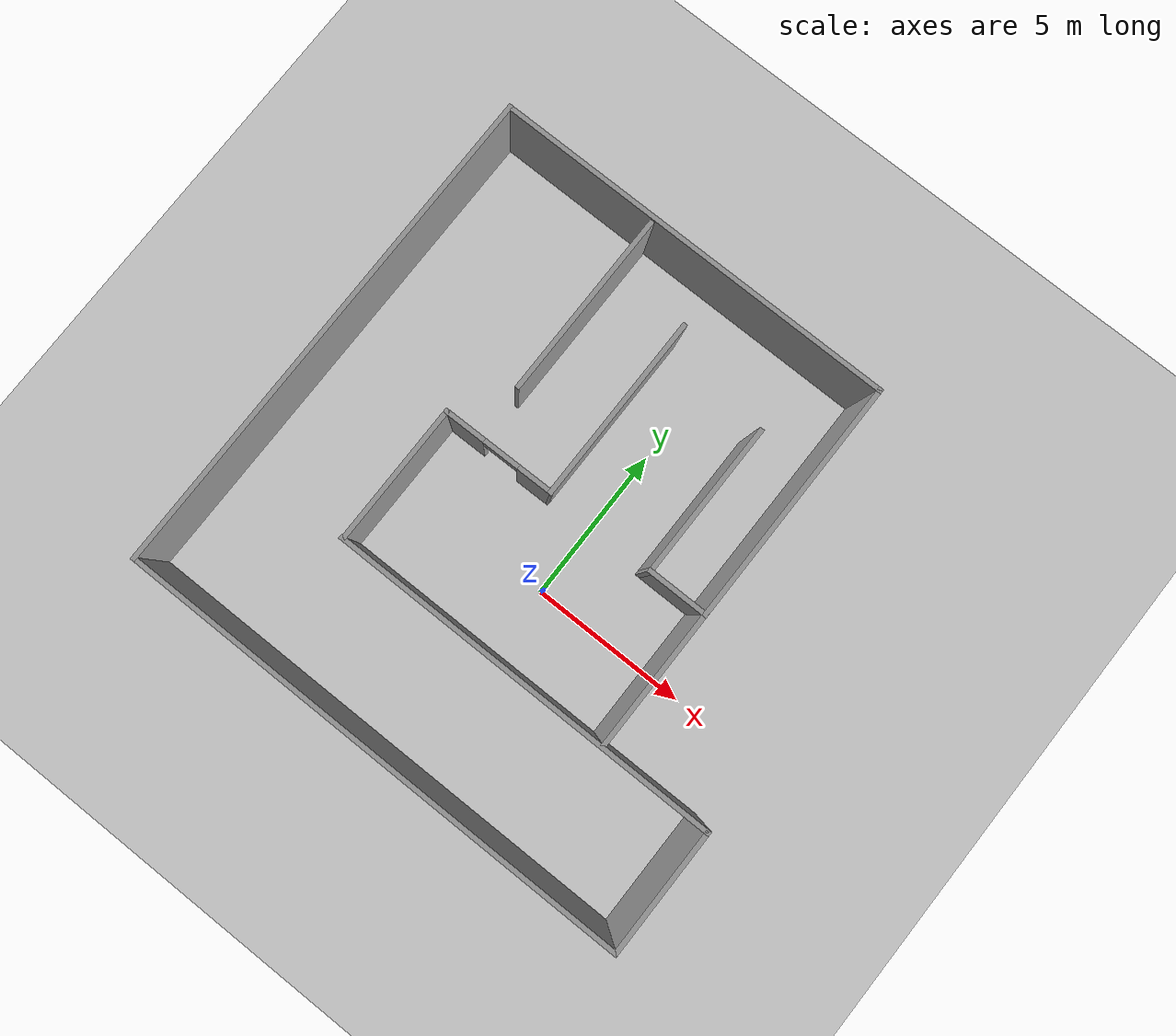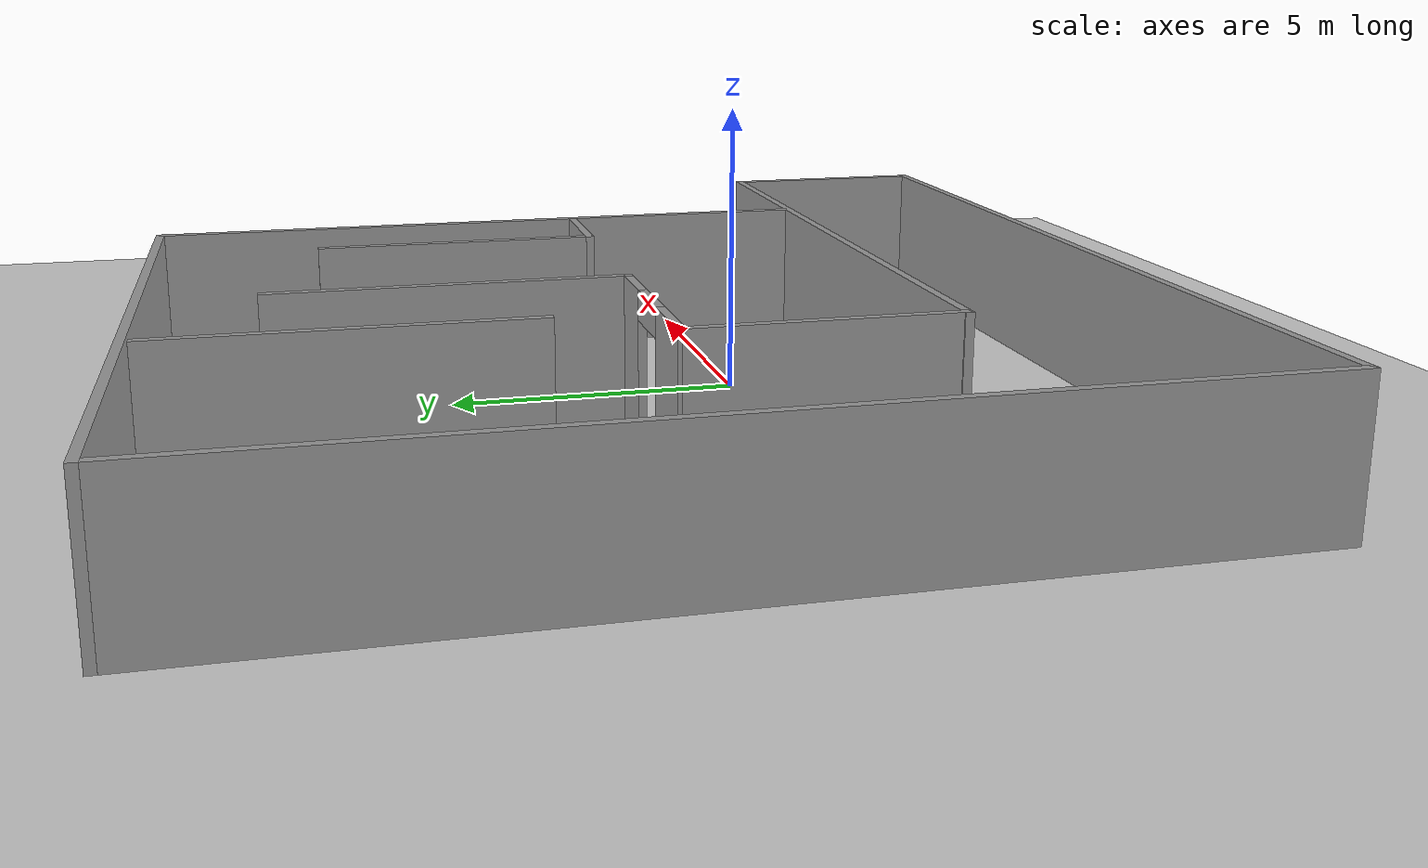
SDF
<sdf version="1.6">
 <world name="default">
  <light name="sun" type="directional">
   <pose>0 0 10 0 -0 0</pose>
   <diffuse>0.8 0.8 0.8 1</diffuse>
   <specular>0.1 0.1 0.1 1</specular>
   <attenuation>
    <range>1000</range>
    <constant>0.9</constant>
    <linear>0.01</linear>
    <quadratic>0.001</quadratic>
   </attenuation>
   <direction>-0.5 0.5 -1</direction>
  </light>
  <model name="ground_plane">
   <static>1</static>
   <link name="link">
    <collision name="collision">
     <geometry><plane><normal>0 0 1</normal><size>100 100</size></plane></geometry>
     <surface><friction><ode><mu>100</mu><mu2>50</mu2></ode></friction></surface>
    </collision>
    <visual name="visual">
     <cast_shadows>0</cast_shadows>
     <geometry><plane><normal>0 0 1</normal><size>100 100</size></plane></geometry>
     <material>
      <script><uri>file://media/materials/scripts/gazebo.material</uri><name>Gazebo/Grey</name></script>
     </material>
    </visual>
   </link>
  </model>
  <gravity>0 0 -9.8</gravity>
  <magnetic_field>6e-06 2.3e-05 -4.2e-05</magnetic_field>
  <atmosphere type="adiabatic"/>
  <physics name="default_physics" default="0" type="ode">
   <max_step_size>0.001</max_step_size>
   <real_time_factor>1</real_time_factor>
   <real_time_update_rate>1000</real_time_update_rate>
  </physics>
  <scene><ambient>0.4 0.4 0.4 1</ambient><background>0.7 0.7 0.7 1</background><shadows>1</shadows></scene>
  <spherical_coordinates>
   <surface_model>EARTH_WGS84</surface_model>
   <latitude_deg>0</latitude_deg>
   <longitude_deg>0</longitude_deg>
   <elevation>0</elevation>
   <heading_deg>0</heading_deg>
  </spherical_coordinates>
  <model name="maze">
   <pose>-0.905122 1.89413 0 0 -0 0</pose>
   <link name="Wall_11">
    <collision name="Wall_11_Collision">
     <geometry><box><size>7.90311 0.15 2.5</size></box></geometry>
     <pose>0 0 1.25 0 -0 0</pose>
    </collision>
    <visual name="Wall_11_Visual">
     <pose>0 0 1.25 0 -0 0</pose>
     <geometry><box><size>7.90311 0.15 2.5</size></box></geometry>
     <material>
      <script><uri>file://media/materials/scripts/gazebo.material</uri><name>Gazebo/Grey</name></script>
      <ambient>1 1 1 1</ambient>
     </material>
    </visual>
    <pose>4.67403 4.17345 0 0 -0 1.57055</pose>
   </link>
   <link name="Wall_12">
    <collision name="Wall_12_Collision">
     <geometry><box><size>13 0.15 2.5</size></box></geometry>
     <pose>0 0 1.25 0 -0 0</pose>
    </collision>
    <visual name="Wall_12_Visual">
     <pose>0 0 1.25 0 -0 0</pose>
     <geometry><box><size>13 0.15 2.5</size></box></geometry>
     <material>
      <script><uri>file://media/materials/scripts/gazebo.material</uri><name>Gazebo/Grey</name></script>
      <ambient>1 1 1 1</ambient>
     </material>
    </visual>
    <pose>-1.75 8.04997 0 0 -0 3.14159</pose>
   </link>
   <link name="Wall_13">
    <collision name="Wall_13_Collision">
     <geometry><box><size>16.25 0.15 2.5</size></box></geometry>
     <pose>0 0 1.25 0 -0 0</pose>
    </collision>
    <visual name="Wall_13_Visual">
     <pose>0 0 1.25 0 -0 0</pose>
     <geometry><box><size>16.25 0.15 2.5</size></box></geometry>
     <material>
      <script><uri>file://media/materials/scripts/gazebo.material</uri><name>Gazebo/Grey</name></script>
      <ambient>1 1 1 1</ambient>
     </material>
    </visual>
    <pose>-8.175 -2.6e-05 0 0 0 -1.5708</pose>
   </link>
   <link name="Wall_14">
    <collision name="Wall_14_Collision">
     <geometry><box><size>16.5 0.15 2.5</size></box></geometry>
     <pose>0 0 1.25 0 -0 0</pose>
    </collision>
    <visual name="Wall_14_Visual">
     <pose>0 0 1.25 0 -0 0</pose>
     <geometry><box><size>16.5 0.15 2.5</size></box></geometry>
     <material>
      <script><uri>file://media/materials/scripts/gazebo.material</uri><name>Gazebo/Grey</name></script>
      <ambient>1 1 1 1</ambient>
     </material>
    </visual>
    <pose>0 -8.05003 0 0 -0 0</pose>
   </link>
   <link name="Wall_15">
    <collision name="Wall_15_Collision">
     <geometry><box><size>4 0.15 2.5</size></box></geometry>
     <pose>0 0 1.25 0 -0 0</pose>
    </collision>
    <visual name="Wall_15_Visual">
     <pose>0 0 1.25 0 -0 0</pose>
     <geometry><box><size>4 0.15 2.5</size></box></geometry>
     <material>
      <script><uri>file://media/materials/scripts/gazebo.material</uri><name>Gazebo/Grey</name></script>
      <ambient>1 1 1 1</ambient>
     </material>
    </visual>
    <pose>8.175 -6.12503 0 0 -0 1.5708</pose>
   </link>
   <link name="Wall_18">
    <pose>-2.36129 0.281637 0 0 -0 0.008572</pose>
    <visual name="Wall_18_Visual_0">
     <pose>-1.17376 0 1.25 0 -0 0</pose>
     <geometry><box><size>1.37132 0.15 2.5</size></box></geometry>
     <material>
      <script><uri>file://media/materials/scripts/gazebo.material</uri><name>Gazebo/Grey</name></script>
      <ambient>1 1 1 1</ambient>
     </material>
    </visual>
    <collision name="Wall_18_Collision_0">
     <geometry><box><size>1.37132 0.15 2.5</size></box></geometry>
     <pose>-1.17376 0 1.25 0 -0 0</pose>
    </collision>
    <visual name="Wall_18_Visual_1">
     <pose>1.27331 0 1.25 0 -0 0</pose>
     <geometry><box><size>1.17222 0.15 2.5</size></box></geometry>
     <material>
      <script><uri>file://media/materials/scripts/gazebo.material</uri><name>Gazebo/Grey</name></script>
      <ambient>1 1 1 1</ambient>
     </material>
    </visual>
    <collision name="Wall_18_Collision_1">
     <geometry><box><size>1.17222 0.15 2.5</size></box></geometry>
     <pose>1.27331 0 1.25 0 -0 0</pose>
    </collision>
    <visual name="Wall_18_Visual_2">
     <pose>0.099552 0 2.25 0 -0 0</pose>
     <geometry><box><size>1.17531 0.15 0.5</size></box></geometry>
     <material>
      <script><uri>file://media/materials/scripts/gazebo.material</uri><name>Gazebo/Grey</name></script>
      <ambient>1 1 1 1</ambient>
     </material>
    </visual>
    <collision name="Wall_18_Collision_2">
     <geometry><box><size>1.17531 0.15 0.5</size></box></geometry>
     <pose>0.099552 0 2.25 0 -0 0</pose>
    </collision>
   </link>
   <link name="Wall_20">
    <collision name="Wall_20_Collision">
     <geometry><box><size>2 0.15 2.5</size></box></geometry>
     <pose>0 0 1.25 0 -0 0</pose>
    </collision>
    <visual name="Wall_20_Visual">
     <pose>0 0 1.25 0 -0 0</pose>
     <geometry><box><size>2 0.15 2.5</size></box></geometry>
     <material>
      <script><uri>file://media/materials/scripts/gazebo.material</uri><name>Gazebo/Grey</name></script>
      <ambient>1 1 1 1</ambient>
     </material>
    </visual>
    <pose>3.74807 0.296933 0 0 -0 3.14159</pose>
   </link>
   <link name="Wall_22">
    <collision name="Wall_22_Collision">
     <geometry><box><size>4.5 0.15 2.5</size></box></geometry>
     <pose>0 0 1.25 0 -0 0</pose>
    </collision>
    <visual name="Wall_22_Visual">
     <pose>0 0 1.25 0 -0 0</pose>
     <geometry><box><size>4.5 0.15 2.5</size></box></geometry>
     <material>
      <script><uri>file://media/materials/scripts/gazebo.material</uri><name>Gazebo/Grey</name></script>
      <ambient>1 1 1 1</ambient>
     </material>
    </visual>
    <pose>4.67307 -1.87807 0 0 0 -1.5708</pose>
   </link>
   <link name="Wall_24">
    <collision name="Wall_24_Collision">
     <geometry><box><size>6 0.15 2.5</size></box></geometry>
     <pose>0 0 1.25 0 -0 0</pose>
    </collision>
    <visual name="Wall_24_Visual">
     <pose>0 0 1.25 0 -0 0</pose>
     <geometry><box><size>6 0.15 2.5</size></box></geometry>
     <material>
      <script><uri>file://media/materials/scripts/gazebo.material</uri><name>Gazebo/Grey</name></script>
      <ambient>1 1 1 1</ambient>
     </material>
    </visual>
    <pose>-0.576931 3.22193 0 0 -0 1.5708</pose>
   </link>
   <link name="Wall_26">
    <collision name="Wall_26_Collision">
     <geometry><box><size>5 0.15 2.5</size></box></geometry>
     <pose>0 0 1.25 0 -0 0</pose>
    </collision>
    <visual name="Wall_26_Visual">
     <pose>0 0 1.25 0 -0 0</pose>
     <geometry><box><size>5 0.15 2.5</size></box></geometry>
     <material>
      <script><uri>file://media/materials/scripts/gazebo.material</uri><name>Gazebo/Grey</name></script>
      <ambient>1 1 1 1</ambient>
     </material>
    </visual>
    <pose>2.82307 2.72193 0 0 -0 1.5708</pose>
   </link>
   <link name="Wall_28">
    <collision name="Wall_28_Collision">
     <geometry><box><size>6 0.15 2.5</size></box></geometry>
     <pose>0 0 1.25 0 -0 0</pose>
    </collision>
    <visual name="Wall_28_Visual">
     <pose>0 0 1.25 0 -0 0</pose>
     <geometry><box><size>6 0.15 2.5</size></box></geometry>
     <material>
      <script><uri>file://media/materials/scripts/gazebo.material</uri><name>Gazebo/Grey</name></script>
      <ambient>1 1 1 1</ambient>
     </material>
    </visual>
    <pose>-3.06003 4.94059 0 0 0 -1.5708</pose>
   </link>
   <link name="Wall_30">
    <collision name="Wall_30_Collision">
     <geometry><box><size>4.5 0.15 2.5</size></box></geometry>
     <pose>0 0 1.25 0 -0 0</pose>
    </collision>
    <visual name="Wall_30_Visual">
     <pose>0 0 1.25 0 -0 0</pose>
     <geometry><box><size>4.5 0.15 2.5</size></box></geometry>
     <material>
      <script><uri>file://media/materials/scripts/gazebo.material</uri><name>Gazebo/Grey</name></script>
      <ambient>1 1 1 1</ambient>
     </material>
    </visual>
    <pose>-4.14565 -1.93925 0 0 0 -1.5708</pose>
   </link>
   <link name="Wall_8">
    <collision name="Wall_8_Collision">
     <geometry><box><size>12.5 0.15 2.5</size></box></geometry>
     <pose>0 0 1.25 0 -0 0</pose>
    </collision>
    <visual name="Wall_8_Visual">
     <pose>0 0 1.25 0 -0 0</pose>
     <geometry><box><size>12.5 0.15 2.5</size></box></geometry>
     <material>
      <script><uri>file://media/materials/scripts/gazebo.material</uri><name>Gazebo/Grey</name></script>
      <ambient>1 1 1 1</ambient>
     </material>
    </visual>
    <pose>2 -4.15003 0 0 -0 3.14159</pose>
   </link>
   <static>1</static>
  </model>
 </world>
</sdf>
